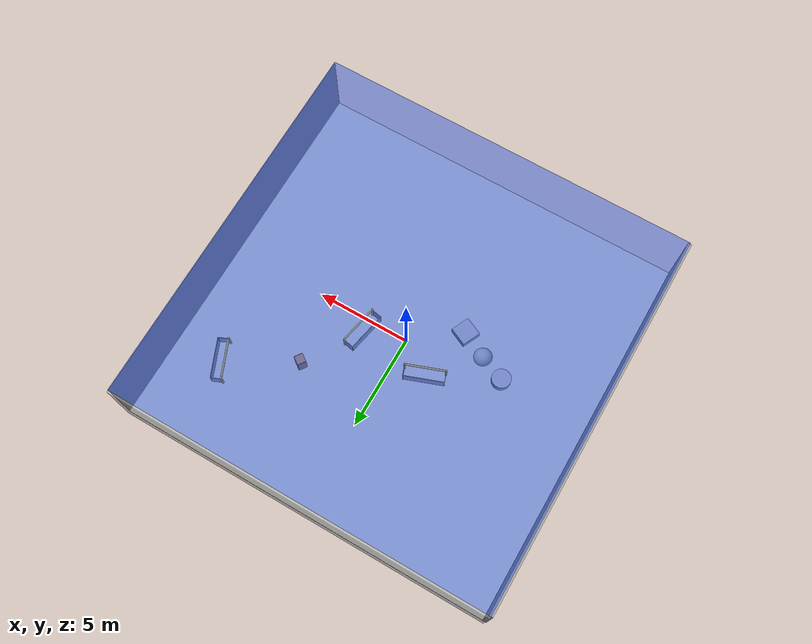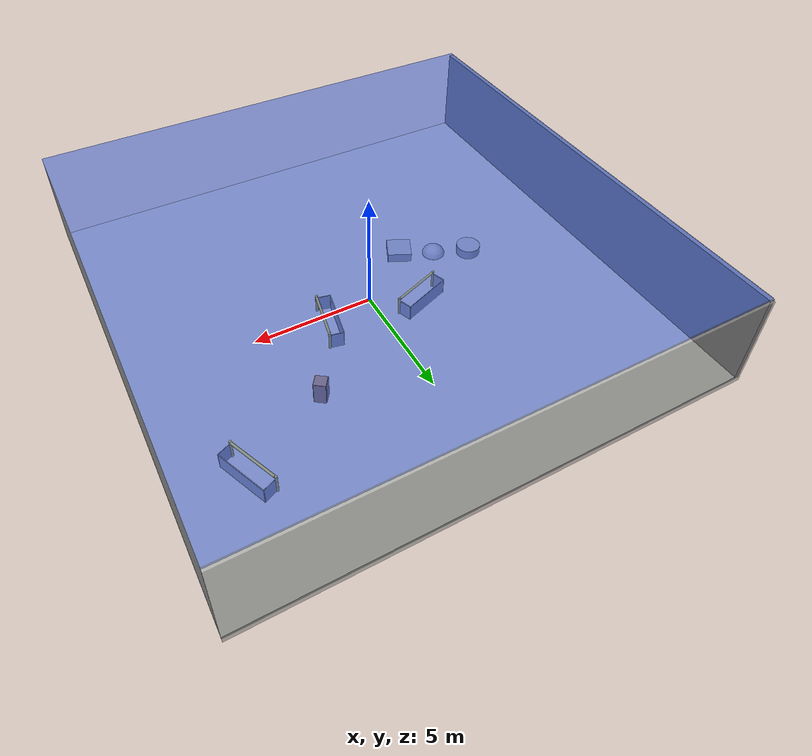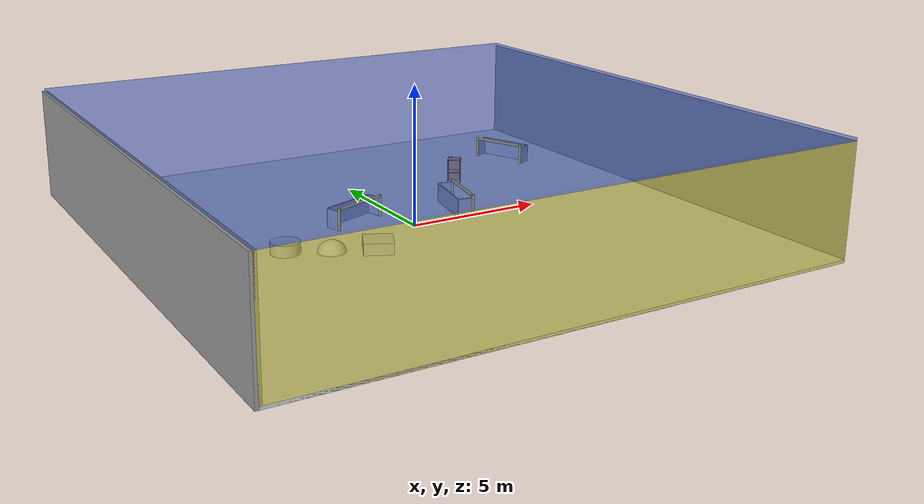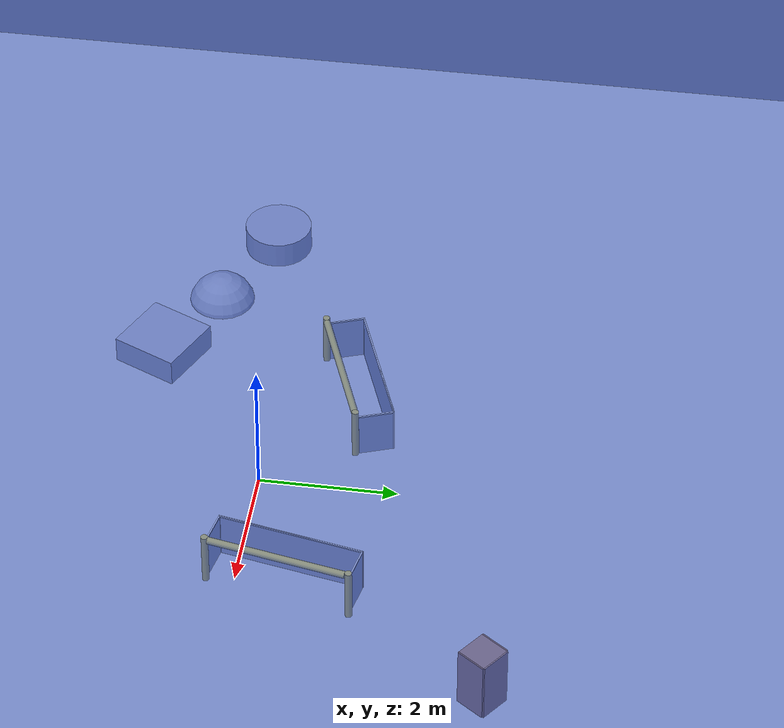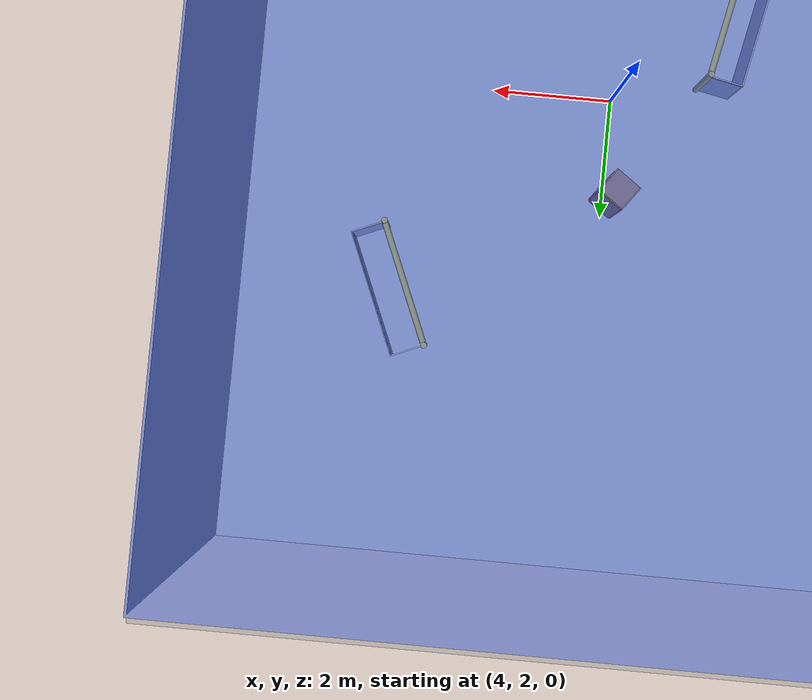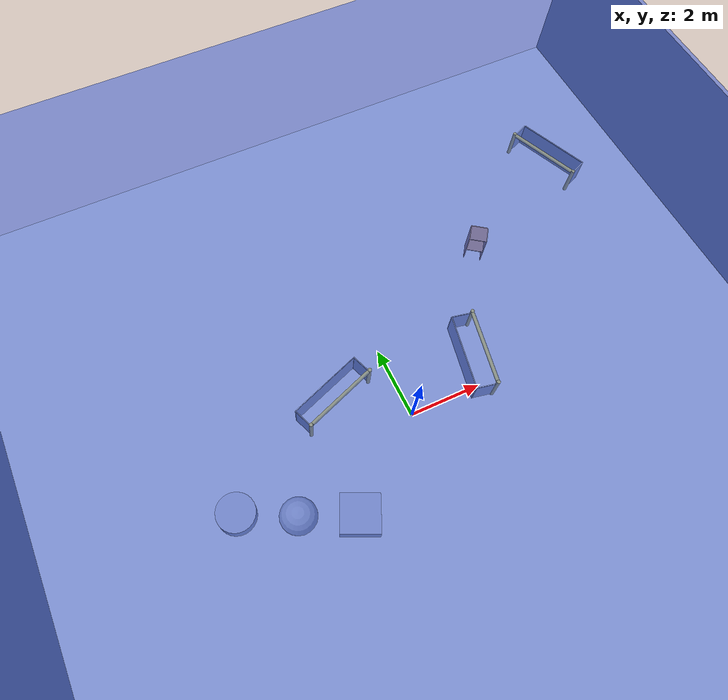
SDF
<sdf version="1.4">
 <world name="default">
  <physics type="ode">
   <max_step_size>0.001</max_step_size>
   <real_time_factor>1</real_time_factor>
   <real_time_update_rate>1000</real_time_update_rate>
   <gravity>0 0 -9.8</gravity>
  </physics>
  <scene><ambient>0.4 0.4 0.4 1</ambient><background>0.7 0.7 0.7 1</background><shadows>1</shadows></scene>
  <model name="Surrounding">
   <static>1</static>
   <link name="Ceiling">
    <collision name="Ceiling_Collision"><geometry><box><size>20 20 0.1</size></box></geometry></collision>
    <visual name="Ceiling_Visual">
     <geometry><box><size>20 20 0.1</size></box></geometry>
     <material>
      <script><uri>file://media/materials/scripts/gazebo.material</uri><name>Gazebo/BlueTransparent</name></script>
     </material>
    </visual>
    <pose>0 0 4.05 0 0 0</pose>
   </link>
   <link name="Wall_South">
    <collision name="Wall_South_Collision">
     <geometry><box><size>20 0 4</size></box></geometry>
     <pose>0 0 2 0 -0 0</pose>
    </collision>
    <visual name="Wall_South_Visual">
     <pose>0 0 2 0 -0 0</pose>
     <geometry><box><size>20 0 4</size></box></geometry>
     <material>
      <script>
       <uri>file://media/materials/scripts/gazebo.material</uri>
       <name>Gazebo/YellowTransparent</name>
      </script>
     </material>
    </visual>
    <velocity_decay><linear>0</linear><angular>0</angular></velocity_decay>
    <pose>0 -10 0 0 -0 0</pose>
   </link>
   <link name="Wall_East">
    <collision name="Wall_21_Collision">
     <geometry><box><size>20 0 4</size></box></geometry>
     <pose>0 0 2 0 -0 0</pose>
    </collision>
    <visual name="Wall_21_Visual">
     <pose>0 0 2 0 -0 0</pose>
     <geometry><box><size>20 0 4</size></box></geometry>
     <material>
      <script><uri>file://media/materials/scripts/gazebo.material</uri><name>Gazebo/Grey</name></script>
     </material>
    </visual>
    <velocity_decay><linear>0</linear><angular>0</angular></velocity_decay>
    <pose>10 0 0 0 -0 1.5708</pose>
   </link>
   <link name="Wall_North">
    <collision name="Wall_22_Collision">
     <geometry><box><size>20 0.2 4</size></box></geometry>
     <pose>0 0 2 0 -0 0</pose>
    </collision>
    <visual name="Wall_22_Visual">
     <pose>0 0 2 0 -0 0</pose>
     <geometry><box><size>20 0.2 4</size></box></geometry>
     <material>
      <script><uri>file://media/materials/scripts/gazebo.material</uri><name>Gazebo/GreyTransparent</name></script>
     </material>
    </visual>
    <velocity_decay><linear>0</linear><angular>0</angular></velocity_decay>
    <pose>0 10 0 0 -0 0</pose>
   </link>
   <link name="Wall_West">
    <collision name="Wall_23_Collision">
     <geometry><box><size>20 0.2 4</size></box></geometry>
     <pose>0 0 2 0 -0 0</pose>
    </collision>
    <visual name="Wall_23_Visual">
     <pose>0 0 2 0 -0 0</pose>
     <geometry><box><size>20 0.2 4</size></box></geometry>
     <material>
      <script><uri>file://media/materials/scripts/gazebo.material</uri><name>Gazebo/Grey</name></script>
     </material>
    </visual>
    <velocity_decay><linear>0</linear><angular>0</angular></velocity_decay>
    <pose>-10 0 0 0 0 -1.5708</pose>
   </link>
   <link name="Ground_link">
    <collision name="collision">
     <pose>0 0 .05 0 -0 0</pose>
     <geometry><box><size>20 20 0.1</size></box></geometry>
    </collision>
    <visual name="visual">
     <pose>0 0 .05 0 -0 0</pose>
     <geometry><box><size>20 20 0.1</size></box></geometry>
     <material>
      <script><uri>file://media/materials/scripts/gazebo.material</uri><name>Gazebo/CeilingTiled</name></script>
     </material>
    </visual>
   </link>
   <static>1</static>
  </model>
  <spherical_coordinates>
   <surface_model>EARTH_WGS84</surface_model>
   <latitude_deg>0</latitude_deg>
   <longitude_deg>0</longitude_deg>
   <elevation>0</elevation>
   <heading_deg>0</heading_deg>
  </spherical_coordinates>
  <light name="lightball_0" type="diffuse">
   <diffuse>0.8 0.8 0.8 1</diffuse>
   <specular>0.2 0.2 0.2 1</specular>
   <attenuation>
    <range>100</range>
    <constant>0.7</constant>
    <linear>0.01</linear>
    <quadratic>0.001</quadratic>
   </attenuation>
   <direction>-0.5 0.1 -0.9</direction>
   <pose>-7.18302832531 9.42601469524 0.569126027311 0 0 0</pose>
  </light>
  <light name="lightball_1" type="diffuse">
   <diffuse>0.8 0.8 0.8 1</diffuse>
   <specular>0.2 0.2 0.2 1</specular>
   <attenuation>
    <range>100</range>
    <constant>0.7</constant>
    <linear>0.01</linear>
    <quadratic>0.001</quadratic>
   </attenuation>
   <direction>-0.5 0.1 -0.9</direction>
   <pose>-2.10301182147 -2.65677139926 2.29933772356 0 0 0</pose>
  </light>
  <light name="lightball_2" type="diffuse">
   <diffuse>0.8 0.8 0.8 1</diffuse>
   <specular>0.2 0.2 0.2 1</specular>
   <attenuation>
    <range>100</range>
    <constant>0.7</constant>
    <linear>0.01</linear>
    <quadratic>0.001</quadratic>
   </attenuation>
   <direction>-0.5 0.1 -0.9</direction>
   <pose>4.55149746096 -6.56514322302 1.41300532795 0 0 0</pose>
  </light>
  <light name="lightball_3" type="diffuse">
   <diffuse>0.8 0.8 0.8 1</diffuse>
   <specular>0.2 0.2 0.2 1</specular>
   <attenuation>
    <range>100</range>
    <constant>0.7</constant>
    <linear>0.01</linear>
    <quadratic>0.001</quadratic>
   </attenuation>
   <direction>-0.5 0.1 -0.9</direction>
   <pose>0.694341194149 0.16010599358 2.97395493969 0 0 0</pose>
  </light>
  <light name="lightball_4" type="diffuse">
   <diffuse>0.8 0.8 0.8 1</diffuse>
   <specular>0.2 0.2 0.2 1</specular>
   <attenuation>
    <range>100</range>
    <constant>0.7</constant>
    <linear>0.01</linear>
    <quadratic>0.001</quadratic>
   </attenuation>
   <direction>-0.5 0.1 -0.9</direction>
   <pose>-2.30402074075 2.52471337251 1.75474394364 0 0 0</pose>
  </light>
  <include>
   <uri>model://textured_shapes</uri>
   <pose>-3.77261689967 -1.19849184505 0 0 0 1.13531858789</pose>
  </include>
  <include>
   <uri>model://robocup_3Dsim_goal</uri>
   <pose>-1.64285185347 0.931662333394 0 0 0 1.92286595206</pose>
  </include>
  <include>
   <uri>model://robocup_3Dsim_goal</uri>
   <pose>2.38051188482 0.660770122829 0 0 0 2.94269392755</pose>
  </include>
  <include><uri>model://cabinet</uri><pose>3.90488783198 3.69215428352 0 0 0 0.946263639397</pose></include>
  <include>
   <uri>model://robocup_3Dsim_goal</uri>
   <pose>7.18786379095 5.48801886779 0 0 0 0.397893378815</pose>
  </include>
 </world>
</sdf>

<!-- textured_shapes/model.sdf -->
<sdf version="1.6">
  <model name="textured_shapes">
    <pose>0 0 0.5 0 0 0</pose>
    <link name="box">
      <pose>0 -1.5 0 0 0 0</pose>
      <collision name="collision">
        <geometry>
          <box>
            <size>1 1 1</size>
          </box>
        </geometry>
      </collision>
      <visual name="visual">
        <geometry>
          <box>
            <size>1 1 1</size>
          </box>
        </geometry>
        <material>
          <script>
            <uri>model://../model_source/models/textured_shapes/materials/scripts</uri>
            <uri>model://../model_source/models/textured_shapes/materials/textures</uri>
            <name>TexturedShape/Squares</name>
          </script>
        </material>
      </visual>
    </link>
    <link name="sphere">
      <collision name="collision">
        <geometry>
          <sphere>
            <radius>0.5</radius>
          </sphere>
        </geometry>
      </collision>
      <visual name="visual">
        <geometry>
          <sphere>
            <radius>0.5</radius>
          </sphere>
        </geometry>
        <material>
          <script>
            <uri>model://../model_source/models/textured_shapes/materials/scripts</uri>
            <uri>model://../model_source/models/textured_shapes/materials/textures</uri>
            <name>TexturedShape/Squares</name>
          </script>
        </material>
      </visual>
    </link>
    <link name="cylinder">
      <pose>0 1.5 0 0 0 0</pose>
      <collision name="collision">
        <geometry>
          <cylinder>
            <radius>0.5</radius>
            <length>1</length>
          </cylinder>
        </geometry>
      </collision>
      <visual name="visual">
        <geometry>
          <cylinder>
            <radius>0.5</radius>
            <length>1</length>
          </cylinder>
        </geometry>
        <material>
          <script>
            <uri>model://../model_source/models/textured_shapes/materials/scripts</uri>
            <uri>model://../model_source/models/textured_shapes/materials/textures</uri>
            <name>TexturedShape/Squares</name>
          </script>
        </material>
      </visual>
    </link>
  </model>
</sdf>

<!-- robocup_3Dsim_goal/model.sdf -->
<sdf version="1.5">
  <model name="robocup_3d_goal">
    <static>true</static>
    <link name="left_post">
      <pose>0 1.05 0.45 0 0 0</pose>
      <collision name="collision">
        <geometry>
          <cylinder>
            <radius>0.05</radius>
            <length>0.9</length>
          </cylinder>
        </geometry>
      </collision>
      <visual name="visual">
        <geometry>
          <cylinder>
            <radius>0.05</radius>
            <length>0.9</length>
          </cylinder>
        </geometry>
        <material>
          <script>
            <uri>file://media/materials/scripts/gazebo.material</uri>
            <name>Gazebo/ZincYellow</name>
          </script>
        </material>
      </visual>
    </link>
    <link name="left_support_horiz_lower">
      <pose>0.30 1.05 0.01 0 0 0</pose>
      <collision name="collision">
        <geometry>
          <box>
            <size>0.50 0.02 0.02</size>
          </box>
        </geometry>
      </collision>
      <visual name="visual">
        <geometry>
          <box>
            <size>0.50 0.02 0.02</size>
          </box>
        </geometry>
        <material>
          <script>
            <uri>file://media/materials/scripts/gazebo.material</uri>
            <name>Gazebo/White</name>
          </script>
        </material>
      </visual>
    </link>
    <link name="left_support_horiz_upper">
      <pose>0.30 1.05 0.79 0 0 0</pose>
      <collision name="collision">
        <geometry>
          <box>
            <size>0.50 0.02 0.02</size>
          </box>
        </geometry>
      </collision>
      <visual name="visual">
        <geometry>
          <box>
            <size>0.50 0.02 0.02</size>
          </box>
        </geometry>
        <material>
          <script>
            <uri>file://media/materials/scripts/gazebo.material</uri>
            <name>Gazebo/White</name>
          </script>
        </material>
      </visual>
    </link>
    <link name="left_support_vertical">
      <pose>0.56 1.05 0.4 0 1.5708 0</pose>
      <collision name="collision">
        <geometry>
          <box>
            <size>0.80 0.02 0.02</size>
          </box>
        </geometry>
      </collision>
      <visual name="visual">
        <geometry>
          <box>
            <size>0.80 0.02 0.02</size>
          </box>
        </geometry>
        <material>
          <script>
            <uri>file://media/materials/scripts/gazebo.material</uri>
            <name>Gazebo/White</name>
          </script>
        </material>
      </visual>
    </link>
    <link name="right_support_horiz_lower">
      <pose>0.30 -1.05 0.01 0 0 0</pose>
      <collision name="collision">
        <geometry>
          <box>
            <size>0.50 0.02 0.02</size>
          </box>
        </geometry>
      </collision>
      <visual name="visual">
        <geometry>
          <box>
            <size>0.50 0.02 0.02</size>
          </box>
        </geometry>
        <material>
          <script>
            <uri>file://media/materials/scripts/gazebo.material</uri>
            <name>Gazebo/White</name>
          </script>
        </material>
      </visual>
    </link>
    <link name="right_support_horiz_upper">
      <pose>0.30 -1.05 0.79 0 0 0</pose>
      <collision name="collision">
        <geometry>
          <box>
            <size>0.50 0.02 0.02</size>
          </box>
        </geometry>
      </collision>
      <visual name="visual">
        <geometry>
          <box>
            <size>0.50 0.02 0.02</size>
          </box>
        </geometry>
        <material>
          <script>
            <uri>file://media/materials/scripts/gazebo.material</uri>
            <name>Gazebo/White</name>
          </script>
        </material>
      </visual>
    </link>
    <link name="right_support_vertical">
      <pose>0.56 -1.05 0.4 0 1.5708 0</pose>
      <collision name="collision">
        <geometry>
          <box>
            <size>0.80 0.02 0.02</size>
          </box>
        </geometry>
      </collision>
      <visual name="visual">
        <geometry>
          <box>
            <size>0.80 0.02 0.02</size>
          </box>
        </geometry>
        <material>
          <script>
            <uri>file://media/materials/scripts/gazebo.material</uri>
            <name>Gazebo/White</name>
          </script>
        </material>
      </visual>
    </link>
    <link name="center_support_horiz_lower">
      <pose>0.56 0 0.01 0 1.5708 0</pose>
      <collision name="collision">
        <geometry>
          <box>
            <size>0.02 2.08 0.02</size>
          </box>
        </geometry>
      </collision>
      <visual name="visual">
        <geometry>
          <box>
            <size>0.02 2.08 0.02</size>
          </box>
        </geometry>
        <material>
          <script>
            <uri>file://media/materials/scripts/gazebo.material</uri>
            <name>Gazebo/White</name>
          </script>
        </material>
      </visual>
    </link>
    <link name="center_support_horiz_upper">
      <pose>0.56 0 0.79 0 1.5708 0</pose>
      <collision name="collision">
        <geometry>
          <box>
            <size>0.02 2.08 0.02</size>
          </box>
        </geometry>
      </collision>
      <visual name="visual">
        <geometry>
          <box>
            <size>0.02 2.08 0.02</size>
          </box>
        </geometry>
        <material>
          <script>
            <uri>file://media/materials/scripts/gazebo.material</uri>
            <name>Gazebo/White</name>
          </script>
        </material>
      </visual>
    </link>
    <link name="right_post">
      <pose>0 -1.05 0.45 0 0 0</pose>
      <collision name="collision">
        <geometry>
          <cylinder>
            <radius>0.05</radius>
            <length>0.9</length>
          </cylinder>
        </geometry>
      </collision>
      <visual name="visual">
        <geometry>
          <cylinder>
            <radius>0.05</radius>
            <length>0.9</length>
          </cylinder>
        </geometry>
        <material>
          <script>
            <uri>file://media/materials/scripts/gazebo.material</uri>
            <name>Gazebo/ZincYellow</name>
          </script>
        </material>
      </visual>
    </link>
    <link name="crossbar">
      <pose>0 0 0.85 1.57 1.57 0</pose>
      <collision name="collision">
        <geometry>
          <cylinder>
            <radius>0.05</radius>
            <length>2.0</length>
          </cylinder>
        </geometry>
      </collision>
      <visual name="visual">
        <geometry>
          <cylinder>
            <radius>0.05</radius>
            <length>2.0</length>
          </cylinder>
        </geometry>
        <material>
          <script>
            <uri>file://media/materials/scripts/gazebo.material</uri>
            <name>Gazebo/ZincYellow</name>
          </script>
        </material>
      </visual>
    </link>
    <link name="center_net">
      <pose>0.56 0 0.40 0 0 0</pose>
      <collision name="collision">
        <geometry>
          <box>
            <size>0.01 2.1 0.80</size>
          </box>
        </geometry>
      </collision>
      <visual name="visual">
        <geometry>
          <box>
            <size>0.01 2.1 0.80</size>
          </box>
        </geometry>
        <material>
          <script>
            <uri>model://../model_source/models/robocup09_spl_field/materials/scripts/</uri>
            <uri>model://../model_source/models/robocup09_spl_field/materials/textures/</uri>
            <name>RoboCup/Net</name>
          </script>
        </material>
      </visual>
    </link>
    <link name="left_net">
      <pose>0.30 1.05 0.40 0 0 0</pose>
      <collision name="collision">
        <geometry>
          <box>
            <size>0.50 0.01 0.76</size>
          </box>
        </geometry>
      </collision>
      <visual name="visual">
        <geometry>
          <box>
            <size>0.50 0.01 0.76</size>
          </box>
        </geometry>
        <material>
          <script>
            <uri>model://../model_source/models/robocup09_spl_field/materials/scripts/</uri>
            <uri>model://../model_source/models/robocup09_spl_field/materials/textures/</uri>
            <name>RoboCup/Net</name>
          </script>
        </material>
      </visual>
    </link>
    <link name="right_net">
      <pose>0.30 -1.05 0.40 0 0 0</pose>
      <collision name="collision">
        <geometry>
          <box>
            <size>0.50 0.01 0.76</size>
          </box>
        </geometry>
      </collision>
      <visual name="visual">
        <geometry>
          <box>
            <size>0.50 0.01 0.76</size>
          </box>
        </geometry>
        <material>
          <script>
            <uri>model://../model_source/models/robocup09_spl_field/materials/scripts/</uri>
            <uri>model://../model_source/models/robocup09_spl_field/materials/textures/</uri>
            <name>RoboCup/Net</name>
          </script>
        </material>
      </visual>
    </link>
  </model>
</sdf>

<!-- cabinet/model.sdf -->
<sdf version="1.5">
  <model name="cabinet">
    <static>true</static>
    <link name="cabinet_bottom_plate">
      <inertial>
        <pose>0 0 -1 0 0 0</pose>
        <inertia>
          <ixx>2.050000</ixx>
          <ixy>0</ixy>
          <ixz>0</ixz>
          <iyy>2.050000</iyy>
          <iyz>0</iyz>
          <izz>2.050000</izz>
        </inertia>
        <mass>25.000000</mass>
      </inertial>
      <collision name="cabinet_bottom_plate_geom">
        <pose>0 0 0.010000 0 0 0</pose>
        <geometry>
          <box>
            <size>0.450000 0.450000 0.020000</size>
          </box>
        </geometry>
      </collision>
      <visual name="cabinet_bottom_plate_geom_visual">
        <pose>0 0 0.010000 0 0 0</pose>
        <geometry>
          <box>
            <size>0.450000 0.450000 0.020000</size>
          </box>
        </geometry>
        <material>
          <script>
            <uri>model://media/materials/scripts/gazebo.material</uri>
            <name>Gazebo/Wood</name>
          </script>
        </material>
      </visual>
      <collision name="cabinet_bottom_plate_geom_cabinet_back_plate">
        <pose>0.235000 0 0.510000 0 0 0</pose>
        <geometry>
          <box>
            <size>0.020000 0.450000 1.020000</size>
          </box>
        </geometry>
      </collision>
      <visual name="cabinet_bottom_plate_geom_cabinet_back_plate_visual">
        <pose>0.235000 0 0.510000 0 0 0</pose>
        <geometry>
          <box>
            <size>0.020000 0.450000 1.020000</size>
          </box>
        </geometry>
        <material>
          <script>
            <uri>model://media/materials/scripts/gazebo.material</uri>
            <name>Gazebo/Wood</name>
          </script>
        </material>
      </visual>
      <collision name="cabinet_bottom_plate_geom_cabinet_left_plate">
        <pose>0 0.235000 0.510000 0 0 0</pose>
        <geometry>
          <box>
            <size>0.450000 0.020000 1.020000</size>
          </box>
        </geometry>
      </collision>
      <visual name="cabinet_bottom_plate_geom_cabinet_left_plate_visual">
        <pose>0 0.235000 0.510000 0 0 0</pose>
        <geometry>
          <box>
            <size>0.450000 0.020000 1.020000</size>
          </box>
        </geometry>
        <material>
          <script>
            <uri>model://media/materials/scripts/gazebo.material</uri>
            <name>Gazebo/Wood</name>
          </script>
        </material>
      </visual>
      <collision name="cabinet_bottom_plate_geom_cabinet_middle_plate">
        <pose>0 0 0.510000 0 0 0</pose>
        <geometry>
          <box>
            <size>0.450000 0.450000 0.020000</size>
          </box>
        </geometry>
      </collision>
      <visual name="cabinet_bottom_plate_geom_cabinet_middle_plate_visual">
        <pose>0 0 0.510000 0 0 0</pose>
        <geometry>
          <box>
            <size>0.450000 0.450000 0.020000</size>
          </box>
        </geometry>
        <material>
          <script>
            <uri>model://media/materials/scripts/gazebo.material</uri>
            <name>Gazebo/Wood</name>
          </script>
        </material>
      </visual>
      <collision name="cabinet_bottom_plate_geom_cabinet_right_plate">
        <pose>0 -0.235000 0.510000 0 0 0</pose>
        <geometry>
          <box>
            <size>0.450000 0.020000 1.020000</size>
          </box>
        </geometry>
      </collision>
      <visual name="cabinet_bottom_plate_geom_cabinet_right_plate_visual">
        <pose>0 -0.235000 0.510000 0 0 0</pose>
        <geometry>
          <box>
            <size>0.450000 0.020000 1.020000</size>
          </box>
        </geometry>
        <material>
          <script>
            <uri>model://media/materials/scripts/gazebo.material</uri>
            <name>Gazebo/Wood</name>
          </script>
        </material>
      </visual>
      <collision name="cabinet_bottom_plate_geom_cabinet_top_plate">
        <pose>0 0 1.010000 0 0 0</pose>
        <geometry>
          <box>
            <size>0.450000 0.450000 0.020000</size>
          </box>
        </geometry>
      </collision>
      <visual name="cabinet_bottom_plate_geom_cabinet_top_plate_visual">
        <pose>0 0 1.010000 0 0 0</pose>
        <geometry>
          <box>
            <size>0.450000 0.450000 0.020000</size>
          </box>
        </geometry>
        <material>
          <script>
            <uri>model://media/materials/scripts/gazebo.material</uri>
            <name>Gazebo/Wood</name>
          </script>
        </material>
      </visual>
    </link>
  </model>
</sdf>
